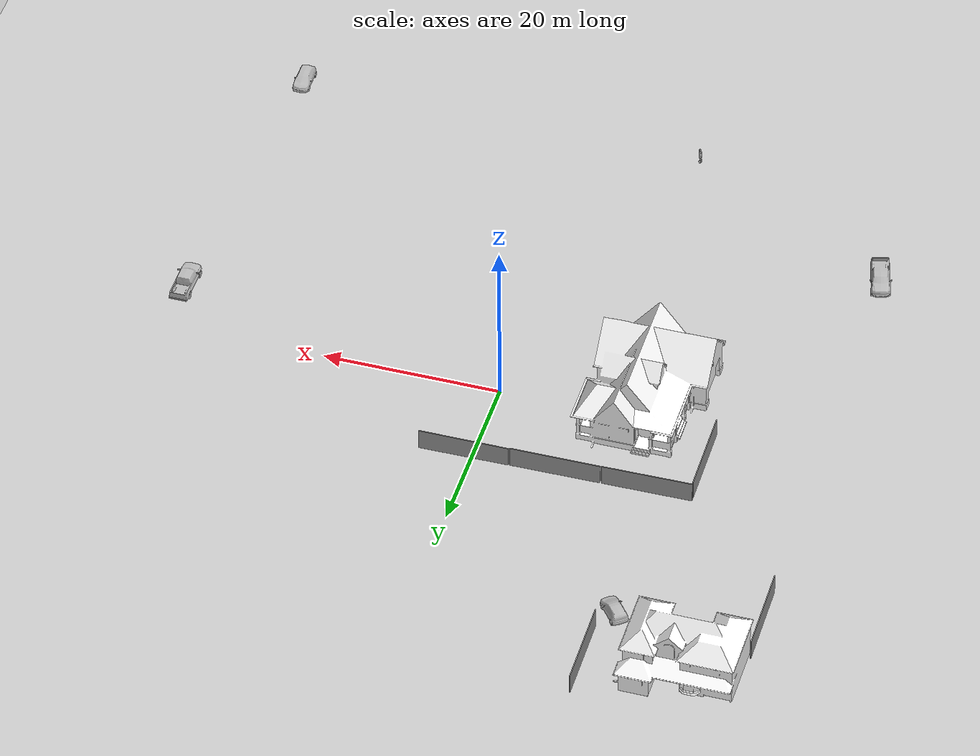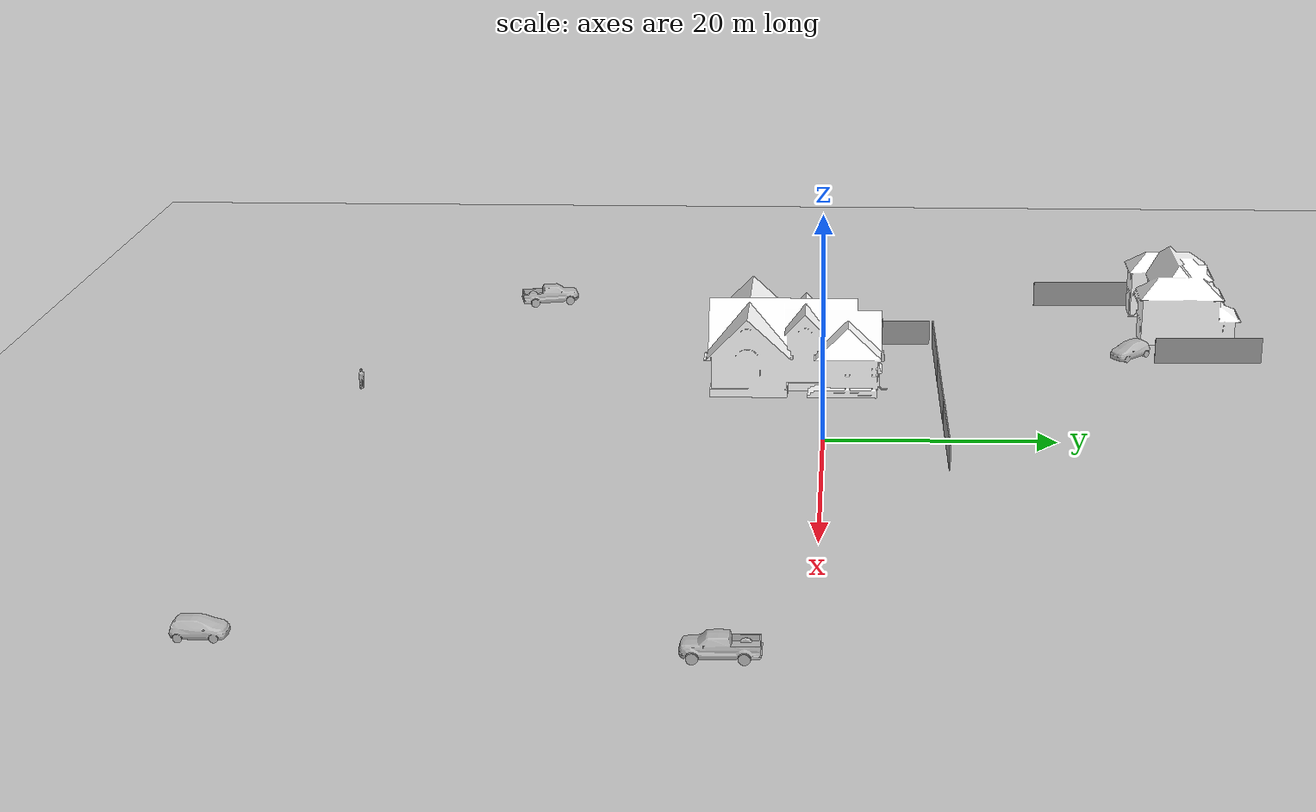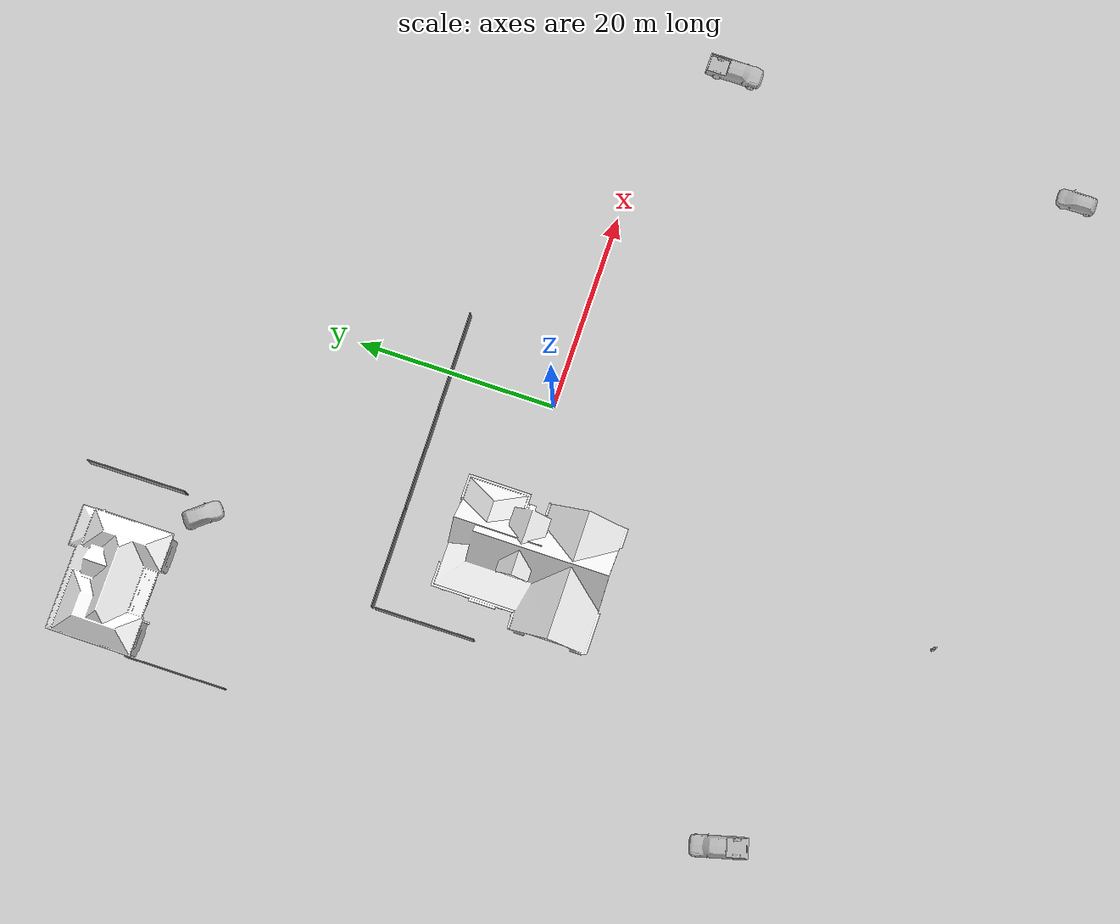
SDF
<sdf version="1.6">
 <world name="default">
  <model name="ground_plane">
   <static>1</static>
   <link name="link">
    <collision name="collision">
     <geometry><plane><normal>0 0 1</normal><size>100 100</size></plane></geometry>
     <surface>
      <contact><collide_bitmask>65535</collide_bitmask></contact>
      <friction><ode><mu>100</mu><mu2>50</mu2></ode></friction>
     </surface>
    </collision>
    <visual name="visual">
     <cast_shadows>0</cast_shadows>
     <geometry><plane><normal>0 0 1</normal><size>100 100</size></plane></geometry>
     <material>
      <script><uri>file://media/materials/scripts/gazebo.material</uri><name>Gazebo/Grey</name></script>
     </material>
    </visual>
   </link>
  </model>
  <model name="House 1">
   <static>1</static>
   <link name="link">
    <collision name="collision">
     <geometry><mesh><uri>model://house_1/meshes/house_1.dae</uri><scale>1.5 1.5 1.5</scale></mesh></geometry>
    </collision>
    <visual name="visual">
     <geometry><mesh><uri>model://house_1/meshes/house_1.dae</uri><scale>1.5 1.5 1.5</scale></mesh></geometry>
     <material>
      <script>
       <uri>model://house_1/materials/scripts</uri>
       <uri>model://house_1/materials/textures</uri>
       <name>House_1/Diffuse</name>
      </script>
      <shader type="normal_map_tangent_space"><normal_map>House_1_Normal.png</normal_map></shader>
     </material>
    </visual>
   </link>
   <pose>-15.4593 -3.01786 0 0 0 -1.56894</pose>
  </model>
  <model name="House 2">
   <static>1</static>
   <link name="link">
    <collision name="collision">
     <geometry><mesh><uri>model://house_2/meshes/house_2.dae</uri><scale>1.5 1.5 1.5</scale></mesh></geometry>
    </collision>
    <visual name="visual">
     <geometry><mesh><uri>model://house_2/meshes/house_2.dae</uri><scale>1.5 1.5 1.5</scale></mesh></geometry>
     <material>
      <script>
       <uri>model://house_2/materials/scripts</uri>
       <uri>model://house_2/materials/textures</uri>
       <uri>model://house_1/materials/textures</uri>
       <name>House_2/Diffuse</name>
      </script>
      <shader type="normal_map_tangent_space">
       <normal_map>model://house_1/materials/textures/House_1_Normal.png</normal_map>
      </shader>
     </material>
    </visual>
   </link>
   <pose>-31.041 34.0063 0 0 -0 0</pose>
  </model>
  <model name="hatchback_red">
   <static>1</static>
   <link name="link">
    <collision name="collision">
     <pose>0 0 0 0 -0 1.5708</pose>
     <geometry>
      <mesh><scale>0.0254 0.0254 0.0254</scale><uri>model://hatchback_red/meshes/hatchback.obj</uri></mesh>
     </geometry>
    </collision>
    <visual name="visual">
     <pose>0 0 0 0 -0 1.5708</pose>
     <geometry>
      <mesh><scale>0.0254 0.0254 0.0254</scale><uri>model://hatchback_red/meshes/hatchback.obj</uri></mesh>
     </geometry>
    </visual>
   </link>
   <pose>-21.1728 29.0448 0 0 0 -0.902517</pose>
  </model>
  <model name="unit_box">
   <link name="link">
    <inertial>
     <mass>1</mass>
     <inertia>
      <ixx>0.166667</ixx>
      <ixy>0</ixy>
      <ixz>0</ixz>
      <iyy>0.166667</iyy>
      <iyz>0</iyz>
      <izz>0.166667</izz>
     </inertia>
    </inertial>
    <pose>0.677495 1.60676 0.740262 0 -0 0</pose>
    <visual name="visual">
     <geometry><box><size>0.1 10 2.5</size></box></geometry>
     <material>
      <script><name>Gazebo/Grey</name><uri>file://media/materials/scripts/gazebo.material</uri></script>
      <shader type="vertex"><normal_map>__default__</normal_map></shader>
      <ambient>0.3 0.3 0.3 1</ambient>
      <diffuse>0.7 0.7 0.7 1</diffuse>
      <specular>0.01 0.01 0.01 1</specular>
      <emissive>0 0 0 1</emissive>
     </material>
    </visual>
    <collision name="collision">
     <geometry><box><size>0.1 10 2.5</size></box></geometry>
     <surface>
      <friction>
       <ode><mu>1</mu><mu2>1</mu2><fdir1>0 0 0</fdir1><slip1>0</slip1><slip2>0</slip2></ode>
       <torsional>
        <coefficient>1</coefficient>
        <patch_radius>0</patch_radius>
        <surface_radius>0</surface_radius>
        <use_patch_radius>1</use_patch_radius>
        <ode><slip>0</slip></ode>
       </torsional>
      </friction>
      <bounce><restitution_coefficient>0</restitution_coefficient><threshold>1e+06</threshold></bounce>
      <contact>
       <collide_without_contact>0</collide_without_contact>
       <collide_without_contact_bitmask>1</collide_without_contact_bitmask>
       <collide_bitmask>1</collide_bitmask>
       <ode>
        <soft_cfm>0</soft_cfm>
        <soft_erp>0.2</soft_erp>
        <kp>1e+13</kp>
        <kd>1</kd>
        <max_vel>0.01</max_vel>
        <min_depth>0</min_depth>
       </ode>
       <bullet>
        <split_impulse>1</split_impulse>
        <split_impulse_penetration_threshold>-0.01</split_impulse_penetration_threshold>
        <soft_cfm>0</soft_cfm>
        <soft_erp>0.2</soft_erp>
        <kp>1e+13</kp>
        <kd>1</kd>
       </bullet>
      </contact>
     </surface>
    </collision>
   </link>
   <link name="link_clone">
    <inertial>
     <mass>1</mass>
     <inertia>
      <ixx>0.166667</ixx>
      <ixy>0</ixy>
      <ixz>0</ixz>
      <iyy>0.166667</iyy>
      <iyz>0</iyz>
      <izz>0.166667</izz>
     </inertia>
    </inertial>
    <pose>-16.0167 -8.24232 0.740262 0 -0 0</pose>
    <visual name="visual">
     <geometry><box><size>0.1 10 2.5</size></box></geometry>
     <material>
      <script><name>Gazebo/Grey</name><uri>file://media/materials/scripts/gazebo.material</uri></script>
      <shader type="vertex"><normal_map>__default__</normal_map></shader>
      <ambient>0.3 0.3 0.3 1</ambient>
      <diffuse>0.7 0.7 0.7 1</diffuse>
      <specular>0.01 0.01 0.01 1</specular>
      <emissive>0 0 0 1</emissive>
     </material>
    </visual>
    <collision name="collision">
     <geometry><box><size>0.1 10 2.5</size></box></geometry>
     <surface>
      <friction>
       <ode><mu>1</mu><mu2>1</mu2><fdir1>0 0 0</fdir1><slip1>0</slip1><slip2>0</slip2></ode>
       <torsional>
        <coefficient>1</coefficient>
        <patch_radius>0</patch_radius>
        <surface_radius>0</surface_radius>
        <use_patch_radius>1</use_patch_radius>
        <ode><slip>0</slip></ode>
       </torsional>
      </friction>
      <bounce><restitution_coefficient>0</restitution_coefficient><threshold>1e+06</threshold></bounce>
      <contact>
       <collide_without_contact>0</collide_without_contact>
       <collide_without_contact_bitmask>1</collide_without_contact_bitmask>
       <collide_bitmask>1</collide_bitmask>
       <ode>
        <soft_cfm>0</soft_cfm>
        <soft_erp>0.2</soft_erp>
        <kp>1e+13</kp>
        <kd>1</kd>
        <max_vel>0.01</max_vel>
        <min_depth>0</min_depth>
       </ode>
       <bullet>
        <split_impulse>1</split_impulse>
        <split_impulse_penetration_threshold>-0.01</split_impulse_penetration_threshold>
        <soft_cfm>0</soft_cfm>
        <soft_erp>0.2</soft_erp>
        <kp>1e+13</kp>
        <kd>1</kd>
       </bullet>
      </contact>
     </surface>
    </collision>
   </link>
   <link name="link_clone_clone">
    <inertial>
     <mass>1</mass>
     <inertia>
      <ixx>0.166667</ixx>
      <ixy>0</ixy>
      <ixz>0</ixz>
      <iyy>0.166667</iyy>
      <iyz>0</iyz>
      <izz>0.166667</izz>
     </inertia>
    </inertial>
    <pose>-4.26052 -29.4127 0.740262 0 -0 0</pose>
    <visual name="visual">
     <geometry><box><size>0.1 10 2.5</size></box></geometry>
     <material>
      <script><name>Gazebo/Grey</name><uri>file://media/materials/scripts/gazebo.material</uri></script>
      <shader type="vertex"><normal_map>__default__</normal_map></shader>
      <ambient>0.3 0.3 0.3 1</ambient>
      <diffuse>0.7 0.7 0.7 1</diffuse>
      <specular>0.01 0.01 0.01 1</specular>
      <emissive>0 0 0 1</emissive>
     </material>
    </visual>
    <collision name="collision">
     <geometry><box><size>0.1 10 2.5</size></box></geometry>
     <surface>
      <friction>
       <ode><mu>1</mu><mu2>1</mu2><fdir1>0 0 0</fdir1><slip1>0</slip1><slip2>0</slip2></ode>
       <torsional>
        <coefficient>1</coefficient>
        <patch_radius>0</patch_radius>
        <surface_radius>0</surface_radius>
        <use_patch_radius>1</use_patch_radius>
        <ode><slip>0</slip></ode>
       </torsional>
      </friction>
      <bounce><restitution_coefficient>0</restitution_coefficient><threshold>1e+06</threshold></bounce>
      <contact>
       <collide_without_contact>0</collide_without_contact>
       <collide_without_contact_bitmask>1</collide_without_contact_bitmask>
       <collide_bitmask>1</collide_bitmask>
       <ode>
        <soft_cfm>0</soft_cfm>
        <soft_erp>0.2</soft_erp>
        <kp>1e+13</kp>
        <kd>1</kd>
        <max_vel>0.01</max_vel>
        <min_depth>0</min_depth>
       </ode>
       <bullet>
        <split_impulse>1</split_impulse>
        <split_impulse_penetration_threshold>-0.01</split_impulse_penetration_threshold>
        <soft_cfm>0</soft_cfm>
        <soft_erp>0.2</soft_erp>
        <kp>1e+13</kp>
        <kd>1</kd>
       </bullet>
      </contact>
     </surface>
    </collision>
   </link>
   <link name="link_clone_clone_0">
    <inertial>
     <mass>1</mass>
     <inertia>
      <ixx>0.166667</ixx>
      <ixy>0</ixy>
      <ixz>0</ixz>
      <iyy>0.166667</iyy>
      <iyz>0</iyz>
      <izz>0.166667</izz>
     </inertia>
    </inertial>
    <pose>0.702241 -24.0766 0.740262 -0.001448 0.002061 -1.56919</pose>
    <visual name="visual">
     <geometry><box><size>0.1 10 2.5</size></box></geometry>
     <material>
      <script><name>Gazebo/Grey</name><uri>file://media/materials/scripts/gazebo.material</uri></script>
      <shader type="vertex"><normal_map>__default__</normal_map></shader>
      <ambient>0.3 0.3 0.3 1</ambient>
      <diffuse>0.7 0.7 0.7 1</diffuse>
      <specular>0.01 0.01 0.01 1</specular>
      <emissive>0 0 0 1</emissive>
     </material>
    </visual>
    <collision name="collision">
     <geometry><box><size>0.1 10 2.5</size></box></geometry>
     <surface>
      <friction>
       <ode><mu>1</mu><mu2>1</mu2><fdir1>0 0 0</fdir1><slip1>0</slip1><slip2>0</slip2></ode>
       <torsional>
        <coefficient>1</coefficient>
        <patch_radius>0</patch_radius>
        <surface_radius>0</surface_radius>
        <use_patch_radius>1</use_patch_radius>
        <ode><slip>0</slip></ode>
       </torsional>
      </friction>
      <bounce><restitution_coefficient>0</restitution_coefficient><threshold>1e+06</threshold></bounce>
      <contact>
       <collide_without_contact>0</collide_without_contact>
       <collide_without_contact_bitmask>1</collide_without_contact_bitmask>
       <collide_bitmask>1</collide_bitmask>
       <ode>
        <soft_cfm>0</soft_cfm>
        <soft_erp>0.2</soft_erp>
        <kp>1e+13</kp>
        <kd>1</kd>
        <max_vel>0.01</max_vel>
        <min_depth>0</min_depth>
       </ode>
       <bullet>
        <split_impulse>1</split_impulse>
        <split_impulse_penetration_threshold>-0.01</split_impulse_penetration_threshold>
        <soft_cfm>0</soft_cfm>
        <soft_erp>0.2</soft_erp>
        <kp>1e+13</kp>
        <kd>1</kd>
       </bullet>
      </contact>
     </surface>
    </collision>
   </link>
   <link name="link_clone_clone_0_clone">
    <inertial>
     <mass>1</mass>
     <inertia>
      <ixx>0.166667</ixx>
      <ixy>0</ixy>
      <ixz>0</ixz>
      <iyy>0.166667</iyy>
      <iyz>0</iyz>
      <izz>0.166667</izz>
     </inertia>
    </inertial>
    <pose>10.8059 -24.0567 0.740262 0.007141 0.002047 -1.56918</pose>
    <visual name="visual">
     <geometry><box><size>0.1 10 2.5</size></box></geometry>
     <material>
      <script><name>Gazebo/Grey</name><uri>file://media/materials/scripts/gazebo.material</uri></script>
      <shader type="vertex"><normal_map>__default__</normal_map></shader>
      <ambient>0.3 0.3 0.3 1</ambient>
      <diffuse>0.7 0.7 0.7 1</diffuse>
      <specular>0.01 0.01 0.01 1</specular>
      <emissive>0 0 0 1</emissive>
     </material>
    </visual>
    <collision name="collision">
     <geometry><box><size>0.1 10 2.5</size></box></geometry>
     <surface>
      <friction>
       <ode><mu>1</mu><mu2>1</mu2><fdir1>0 0 0</fdir1><slip1>0</slip1><slip2>0</slip2></ode>
       <torsional>
        <coefficient>1</coefficient>
        <patch_radius>0</patch_radius>
        <surface_radius>0</surface_radius>
        <use_patch_radius>1</use_patch_radius>
        <ode><slip>0</slip></ode>
       </torsional>
      </friction>
      <bounce><restitution_coefficient>0</restitution_coefficient><threshold>1e+06</threshold></bounce>
      <contact>
       <collide_without_contact>0</collide_without_contact>
       <collide_without_contact_bitmask>1</collide_without_contact_bitmask>
       <collide_bitmask>1</collide_bitmask>
       <ode>
        <soft_cfm>0</soft_cfm>
        <soft_erp>0.2</soft_erp>
        <kp>1e+13</kp>
        <kd>1</kd>
        <max_vel>0.01</max_vel>
        <min_depth>0</min_depth>
       </ode>
       <bullet>
        <split_impulse>1</split_impulse>
        <split_impulse_penetration_threshold>-0.01</split_impulse_penetration_threshold>
        <soft_cfm>0</soft_cfm>
        <soft_erp>0.2</soft_erp>
        <kp>1e+13</kp>
        <kd>1</kd>
       </bullet>
      </contact>
     </surface>
    </collision>
   </link>
   <link name="link_clone_clone_0_clone_0">
    <inertial>
     <mass>1</mass>
     <inertia>
      <ixx>0.166667</ixx>
      <ixy>0</ixy>
      <ixz>0</ixz>
      <iyy>0.166667</iyy>
      <iyz>0</iyz>
      <izz>0.166667</izz>
     </inertia>
    </inertial>
    <pose>20.9566 -24.0149 0.740262 0.008761 0.002044 -1.56918</pose>
    <visual name="visual">
     <geometry><box><size>0.1 10 2.5</size></box></geometry>
     <material>
      <script><name>Gazebo/Grey</name><uri>file://media/materials/scripts/gazebo.material</uri></script>
      <shader type="vertex"><normal_map>__default__</normal_map></shader>
      <ambient>0.3 0.3 0.3 1</ambient>
      <diffuse>0.7 0.7 0.7 1</diffuse>
      <specular>0.01 0.01 0.01 1</specular>
      <emissive>0 0 0 1</emissive>
     </material>
    </visual>
    <collision name="collision">
     <geometry><box><size>0.1 10 2.5</size></box></geometry>
     <surface>
      <friction>
       <ode><mu>1</mu><mu2>1</mu2><fdir1>0 0 0</fdir1><slip1>0</slip1><slip2>0</slip2></ode>
       <torsional>
        <coefficient>1</coefficient>
        <patch_radius>0</patch_radius>
        <surface_radius>0</surface_radius>
        <use_patch_radius>1</use_patch_radius>
        <ode><slip>0</slip></ode>
       </torsional>
      </friction>
      <bounce><restitution_coefficient>0</restitution_coefficient><threshold>1e+06</threshold></bounce>
      <contact>
       <collide_without_contact>0</collide_without_contact>
       <collide_without_contact_bitmask>1</collide_without_contact_bitmask>
       <collide_bitmask>1</collide_bitmask>
       <ode>
        <soft_cfm>0</soft_cfm>
        <soft_erp>0.2</soft_erp>
        <kp>1e+13</kp>
        <kd>1</kd>
        <max_vel>0.01</max_vel>
        <min_depth>0</min_depth>
       </ode>
       <bullet>
        <split_impulse>1</split_impulse>
        <split_impulse_penetration_threshold>-0.01</split_impulse_penetration_threshold>
        <soft_cfm>0</soft_cfm>
        <soft_erp>0.2</soft_erp>
        <kp>1e+13</kp>
        <kd>1</kd>
       </bullet>
      </contact>
     </surface>
    </collision>
   </link>
   <static>1</static>
   <pose>-20.2446 34.3162 0.470073 0.006011 -5.9e-05 0.009873</pose>
  </model>
  <model name="hatchback_blue">
   <static>1</static>
   <link name="link">
    <collision name="collision">
     <pose>0 0 0 0 -0 1.5708</pose>
     <geometry>
      <mesh><scale>0.0254 0.0254 0.0254</scale><uri>model://hatchback_blue/meshes/hatchback.obj</uri></mesh>
     </geometry>
    </collision>
    <visual name="visual">
     <pose>0 0 0 0 -0 1.5708</pose>
     <geometry>
      <mesh><scale>0.0254 0.0254 0.0254</scale><uri>model://hatchback_blue/meshes/hatchback.obj</uri></mesh>
     </geometry>
    </visual>
   </link>
   <pose>35.9911 -42.9617 0 0 -0 1.58106</pose>
  </model>
  <model name="person_standing">
   <link name="link">
    <inertial>
     <pose>0 -0.1 0.95 0 -0 0</pose>
     <mass>80</mass>
     <inertia><ixx>24.88</ixx><ixy>0</ixy><ixz>0</ixz><iyy>25.73</iyy><iyz>0</iyz><izz>2.48</izz></inertia>
    </inertial>
    <collision name="bottom">
     <pose>0 -0.1 0.01 0 -0 0</pose>
     <geometry><box><size>0.5 0.35 0.02</size></box></geometry>
    </collision>
    <collision name="person">
     <pose>0 0 0.02 0.04 -0 0</pose>
     <geometry><mesh><uri>model://person_standing/meshes/standing.dae</uri></mesh></geometry>
    </collision>
    <visual name="visual">
     <pose>0 0 0.02 0.04 -0 0</pose>
     <geometry><mesh><uri>model://person_standing/meshes/standing.dae</uri></mesh></geometry>
    </visual>
   </link>
   <pose>-10.9928 -42.235 -1e-06 -2e-06 1e-06 2.30391</pose>
  </model>
  <model name="pickup">
   <static>1</static>
   <link name="link">
    <collision name="collision">
     <pose>0 0 0 0 0 -1.5708</pose>
     <geometry><mesh><uri>model://pickup/meshes/pickup.dae</uri></mesh></geometry>
    </collision>
    <visual name="visual">
     <pose>0 0 0 0 0 -1.5708</pose>
     <geometry><mesh><uri>model://pickup/meshes/pickup.dae</uri></mesh></geometry>
    </visual>
   </link>
   <pose>-35.2825 -28.2748 0 0 -0 1.82914</pose>
  </model>
  <model name="pickup_clone">
   <static>1</static>
   <link name="link">
    <collision name="collision">
     <pose>0 0 0 0 0 -1.5708</pose>
     <geometry><mesh><uri>model://pickup/meshes/pickup.dae</uri></mesh></geometry>
    </collision>
    <visual name="visual">
     <pose>0 0 0 0 0 -1.5708</pose>
     <geometry><mesh><uri>model://pickup/meshes/pickup.dae</uri></mesh></geometry>
    </visual>
   </link>
   <pose>38.0023 -6.48221 0 0 -0 -1.57063</pose>
  </model>
 </world>
</sdf>
